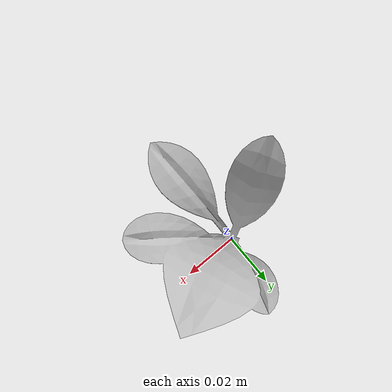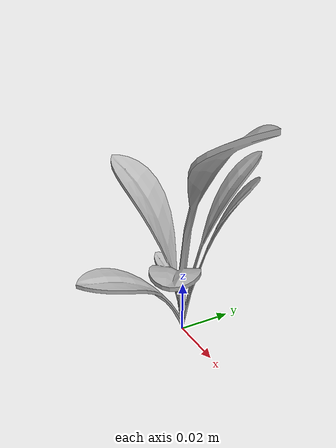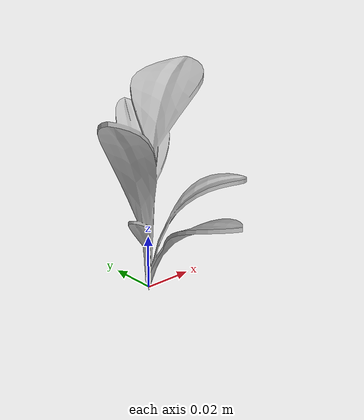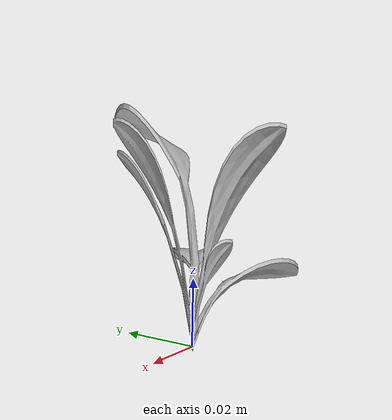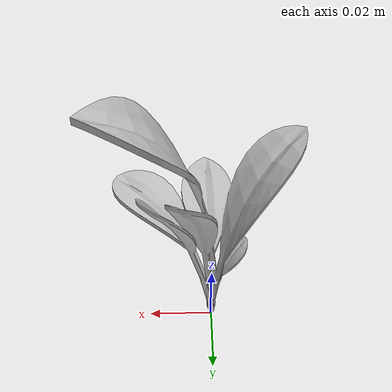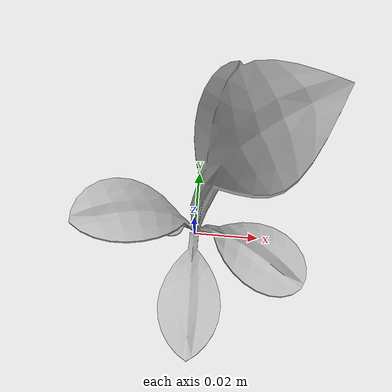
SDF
<sdf version="1.6">
  <model name="sugar_beet_29">
    <static>true</static>
    <link name="body">
      <visual name="visual">
        <geometry>
          <mesh>
            <uri>file:///sugar_beet_29/media/sugar_beet.dae</uri>
          </mesh>
        </geometry>
      </visual>
    </link>
  </model>
</sdf>
